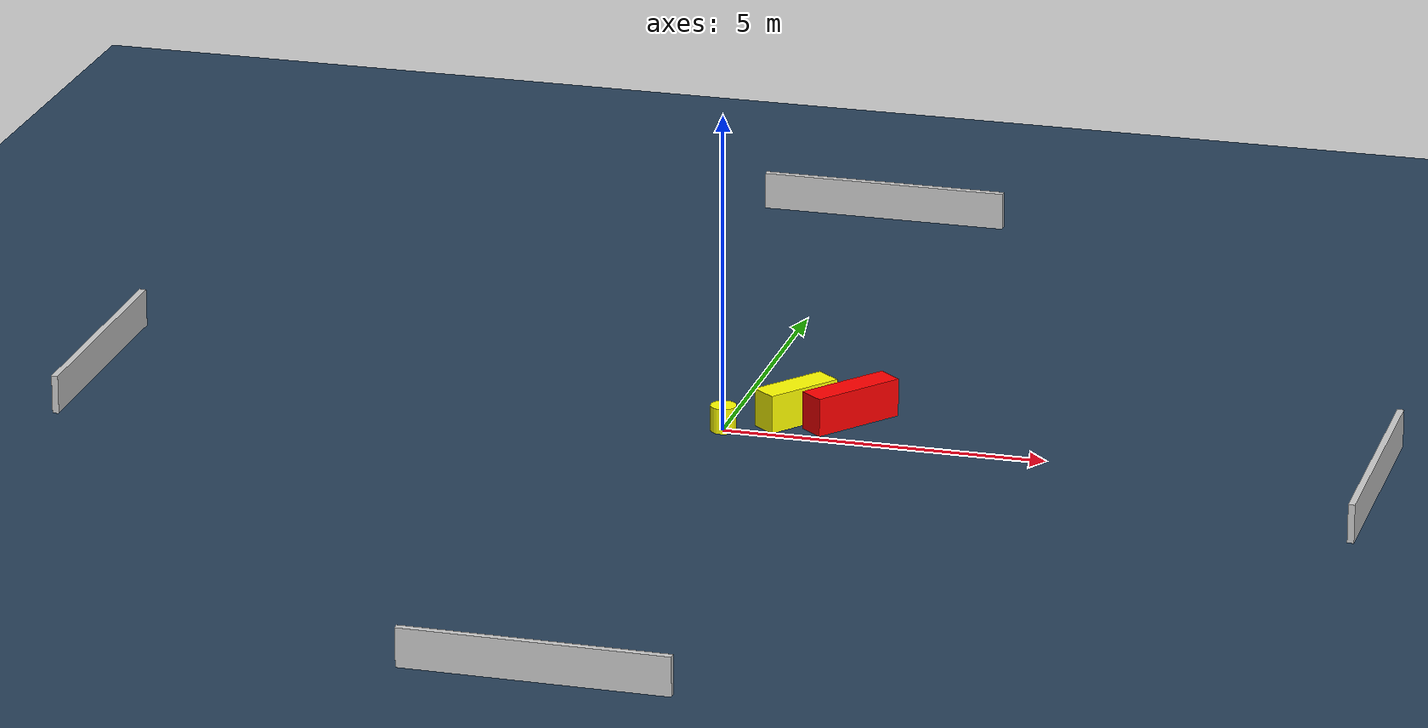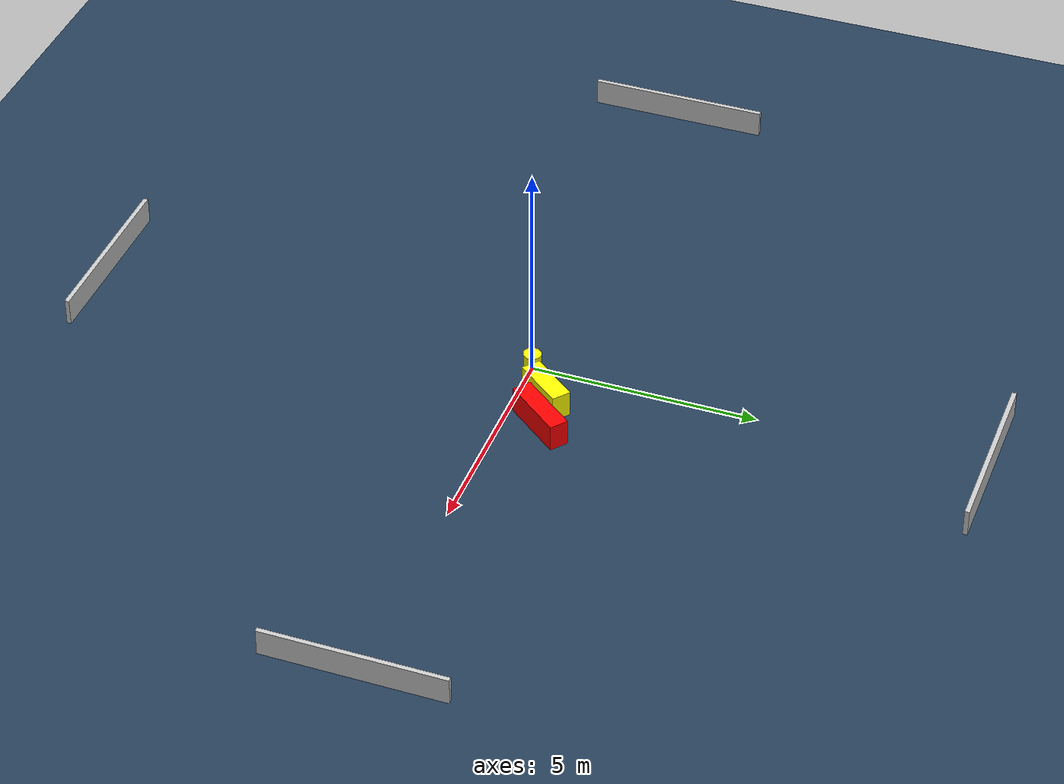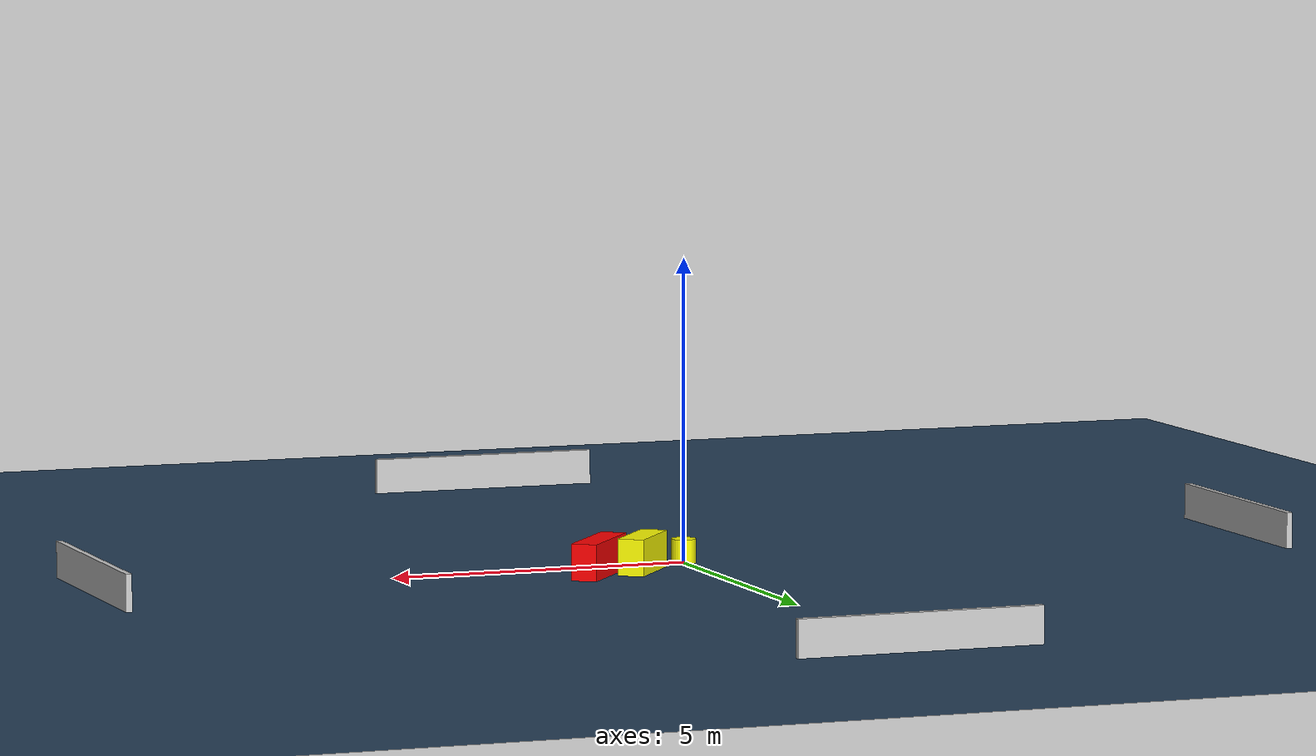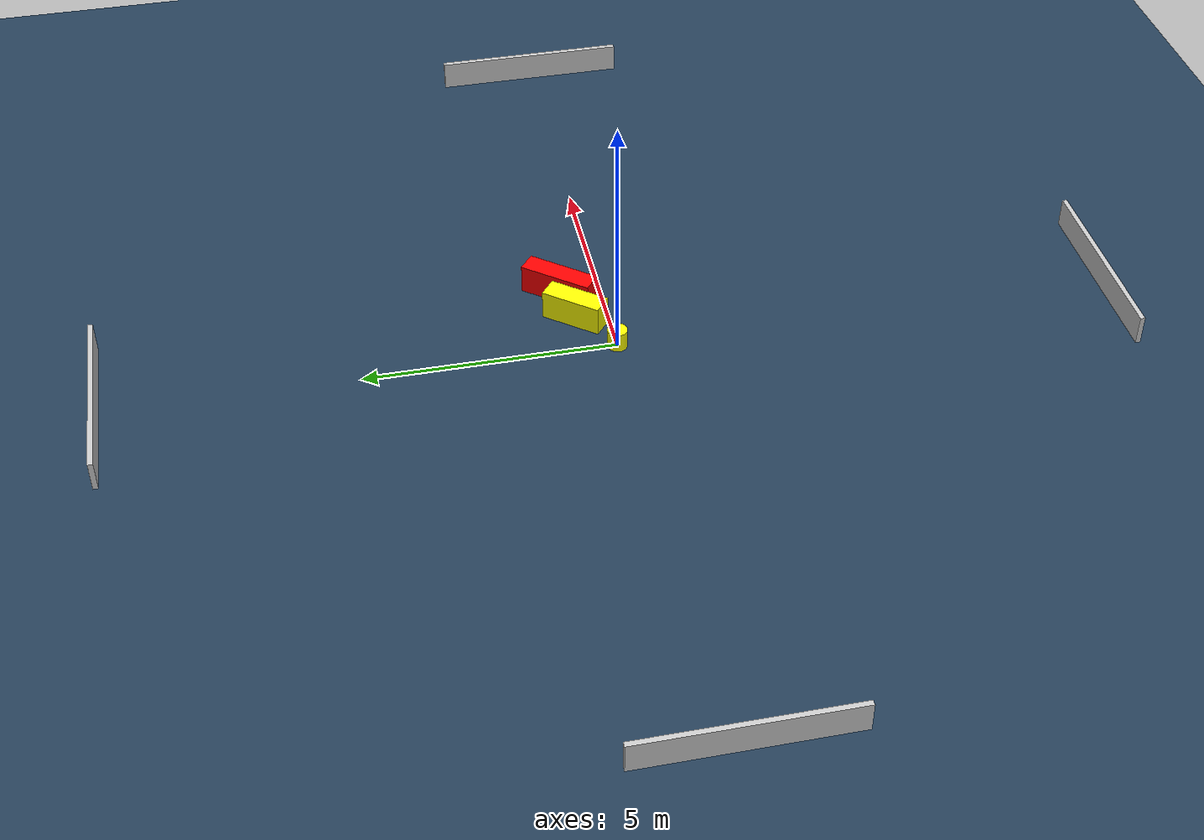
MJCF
<?xml version="1.0" ?>
<mujoco model="generated_environment">
  <option timestep="0.01" integrator="RK4" cone="elliptic"/>
  <default>
    <geom density="1"/>
  </default>
  <asset>
    <texture builtin="gradient" height="3072" name="skybox" rgb1="0.3 0.5 0.7" rgb2="0 0 0" type="skybox" width="512"/>
    <texture builtin="checker" height="300" name="groundplane" rgb1="0.2 0.3 0.4" rgb2="0.1 0.2 0.3" type="2d" width="300"/>
    <material name="groundplane" reflectance="0.2" texrepeat="5 5" texture="groundplane"/>
  </asset>
  <worldbody>
    <light dir="0 0 -1" directional="true" pos="0 0 1.5"/>
    <geom condim="3" friction="0.5 0.005 0.001" material="groundplane" name="floor" pos="0 0 0" size="0 0 0.05" type="plane"/>
    <body name="walls">
      <geom name="wall_1" condim="4" pos="-10.0 0.0 0.3" rgba="0.800000011920929 0.800000011920929 0.800000011920929 1.0" size="0.05 2.0 0.3" type="box"/>
      <geom name="wall_2" condim="4" pos="10.0 0.0 0.3" rgba="0.800000011920929 0.800000011920929 0.800000011920929 1.0" size="0.05 2.0 0.3" type="box"/>
      <geom name="wall_3" condim="4" pos="0.0 -10.0 0.3" rgba="0.800000011920929 0.800000011920929 0.800000011920929 1.0" size="2.0 0.05 0.3" type="box"/>
      <geom name="wall_4" condim="4" pos="0.0 10.0 0.3" rgba="0.800000011920929 0.800000011920929 0.800000011920929 1.0" size="2.0 0.05 0.3" type="box"/>
    </body>
    <body name="robot">
      <joint name="joint_x" type="slide" pos="0 0 0" axis="1 0 0"/>
      <joint name="joint_y" type="slide" pos="0 0 0" axis="0 1 0"/>
      <geom name="robot" type="cylinder" pos="0.0 0.0 0.2" size="0.2 0.2 0.0" mass="5.0" friction="1.0 0.005 0.0001" condim="4" rgba="1.0 1.0 0.0 1.0"/>
    </body>
    <body name="obstacle_1_movable">
      <geom name="obstacle_1_movable" condim="4" pos="0.9615222274423455 0.6551673146145828 0.3" euler="0 0 141.4683952383934" friction="0.0 0.005 0.001" rgba="1.0 1.0 0.0 1.0" size="0.21629705874253258 0.6177068112782398 0.3" type="box" mass="0.1"/>
      <joint type="free"/>
    </body>
    <body name="obstacle_2_static">
      <geom name="obstacle_2_static" condim="4" pos="1.775408716589033 0.8204549140009332 0.3" euler="0 0 51.3162707735107" friction="0.0 0.005 0.001" rgba="1.0 0.0 0.0 1.0" size="0.7500760188197932 0.20946365803668865 0.3" type="box"/>
    </body>
  </worldbody>
  <actuator>
    <motor name="actuator_x" joint="joint_x" gear="1" ctrlrange="-1 1"/>
    <motor name="actuator_y" joint="joint_y" gear="1" ctrlrange="-1 1"/>
  </actuator>
</mujoco>
